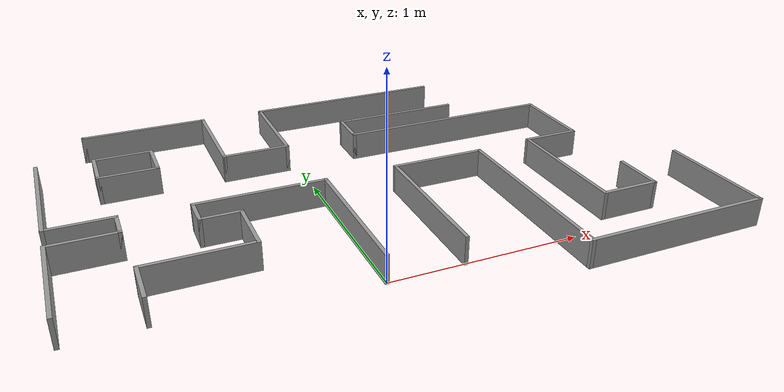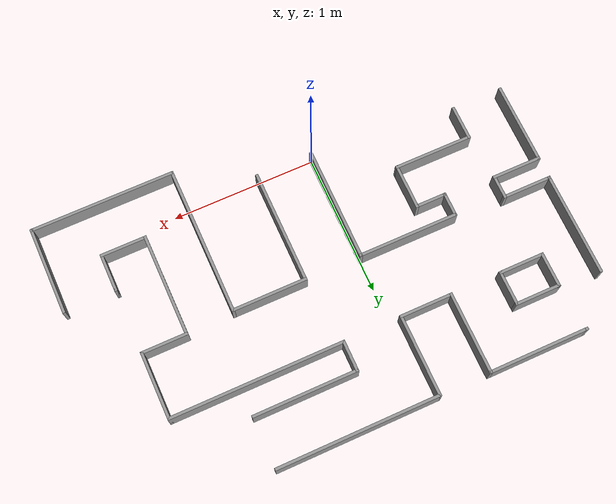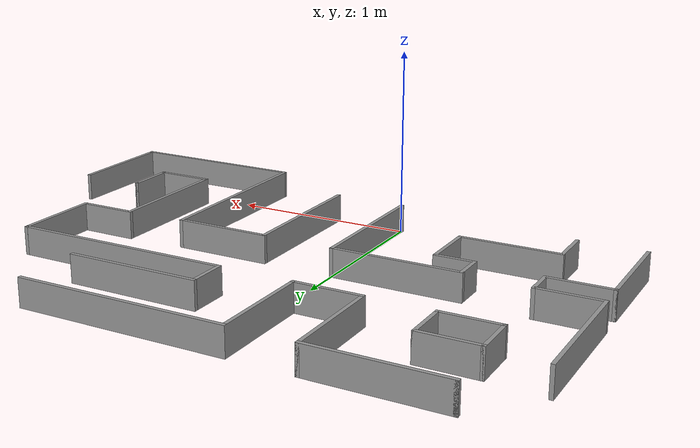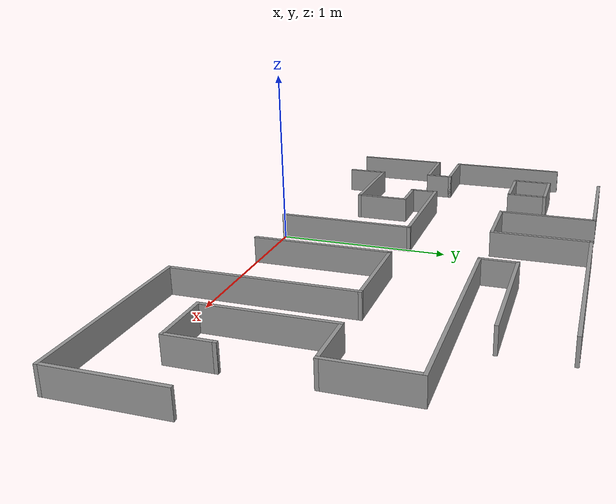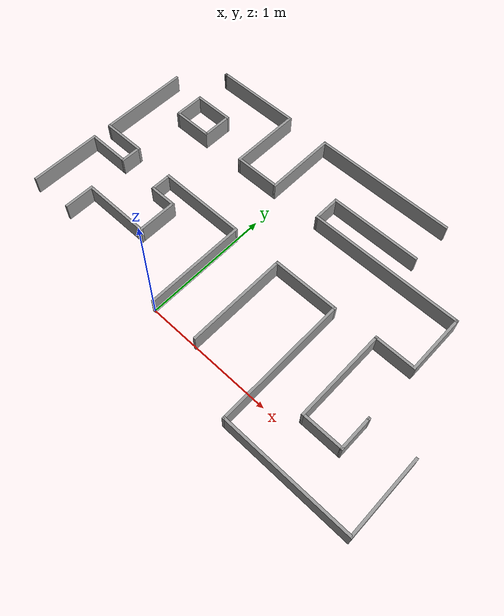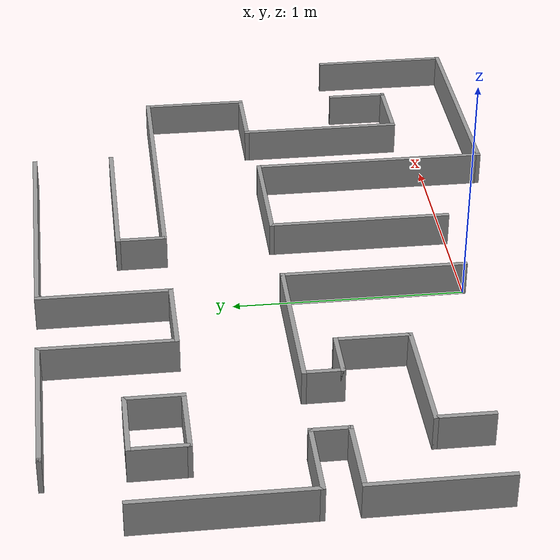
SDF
<?xml version='1.0'?>
<sdf version='1.6'>
  <model name='projmap'>
    <pose frame=''>0.261 0.786 0 0 -0 0</pose>
    <link name='Wall_0'>
      <collision name='Wall_0_Collision'>
        <geometry>
          <box>
            <size>0.807 0.02 0.152</size>
          </box>
        </geometry>
        <pose frame=''>0 0 0.076 0 -0 0</pose>
      </collision>
      <visual name='Wall_0_Visual'>
        <pose frame=''>0 0 0.076 0 -0 0</pose>
        <geometry>
          <box>
            <size>0.807 0.02 0.152</size>
          </box>
        </geometry>
        <material>
          <script>
            <uri>file://media/materials/scripts/gazebo.material</uri>
            <name>Gazebo/Grey</name>
          </script>
          <ambient>1 1 1 1</ambient>
        </material>
        <meta>
          <layer>0</layer>
        </meta>
      </visual>
      <pose frame=''>-0.261 -0.3925 0 0 -0 1.5708</pose>
    </link>
    <link name='Wall_105'>
      <collision name='Wall_105_Collision'>
        <geometry>
          <box>
            <size>0.25 0.02 0.152</size>
          </box>
        </geometry>
        <pose frame=''>0 0 0.076 0 -0 0</pose>
      </collision>
      <visual name='Wall_105_Visual'>
        <pose frame=''>0 0 0.076 0 -0 0</pose>
        <geometry>
          <box>
            <size>0.25 0.02 0.152</size>
          </box>
        </geometry>
        <material>
          <script>
            <uri>file://media/materials/scripts/gazebo.material</uri>
            <name>Gazebo/Grey</name>
          </script>
          <ambient>1 1 1 1</ambient>
        </material>
        <meta>
          <layer>0</layer>
        </meta>
      </visual>
      <pose frame=''>-1.035 0.595 0 0 -0 1.5708</pose>
    </link>
    <link name='Wall_107'>
      <collision name='Wall_107_Collision'>
        <geometry>
          <box>
            <size>0.324 0.02 0.152</size>
          </box>
        </geometry>
        <pose frame=''>0 0 0.076 0 -0 0</pose>
      </collision>
      <visual name='Wall_107_Visual'>
        <pose frame=''>0 0 0.076 0 -0 0</pose>
        <geometry>
          <box>
            <size>0.324 0.02 0.152</size>
          </box>
        </geometry>
        <material>
          <script>
            <uri>file://media/materials/scripts/gazebo.material</uri>
            <name>Gazebo/Grey</name>
          </script>
          <ambient>1 1 1 1</ambient>
        </material>
        <meta>
          <layer>0</layer>
        </meta>
      </visual>
      <pose frame=''>-1.187 0.48 0 0 -0 3.14159</pose>
    </link>
    <link name='Wall_111'>
      <collision name='Wall_111_Collision'>
        <geometry>
          <box>
            <size>0.25 0.02 0.152</size>
          </box>
        </geometry>
        <pose frame=''>0 0 0.076 0 -0 0</pose>
      </collision>
      <visual name='Wall_111_Visual'>
        <pose frame=''>0 0 0.076 0 -0 0</pose>
        <geometry>
          <box>
            <size>0.25 0.02 0.152</size>
          </box>
        </geometry>
        <material>
          <script>
            <uri>file://media/materials/scripts/gazebo.material</uri>
            <name>Gazebo/Grey</name>
          </script>
          <ambient>1 1 1 1</ambient>
        </material>
        <meta>
          <layer>0</layer>
        </meta>
      </visual>
      <pose frame=''>-1.339 0.595 0 0 -0 1.5708</pose>
    </link>
    <link name='Wall_116'>
      <collision name='Wall_116_Collision'>
        <geometry>
          <box>
            <size>0.324 0.02 0.152</size>
          </box>
        </geometry>
        <pose frame=''>0 0 0.076 0 -0 0</pose>
      </collision>
      <visual name='Wall_116_Visual'>
        <pose frame=''>0 0 0.076 0 -0 0</pose>
        <geometry>
          <box>
            <size>0.324 0.02 0.152</size>
          </box>
        </geometry>
        <material>
          <script>
            <uri>file://media/materials/scripts/gazebo.material</uri>
            <name>Gazebo/Grey</name>
          </script>
          <ambient>1 1 1 1</ambient>
        </material>
        <meta>
          <layer>0</layer>
        </meta>
      </visual>
      <pose frame=''>-1.187 0.71 0 0 -0 0</pose>
    </link>
    <link name='Wall_13'>
      <collision name='Wall_13_Collision'>
        <geometry>
          <box>
            <size>0.325 0.02 0.152</size>
          </box>
        </geometry>
        <pose frame=''>0 0 0.076 0 -0 0</pose>
      </collision>
      <visual name='Wall_13_Visual'>
        <pose frame=''>0 0 0.076 0 -0 0</pose>
        <geometry>
          <box>
            <size>0.325 0.02 0.152</size>
          </box>
        </geometry>
        <material>
          <script>
            <uri>file://media/materials/scripts/gazebo.material</uri>
            <name>Gazebo/Grey</name>
          </script>
          <ambient>1 1 1 1</ambient>
        </material>
        <meta>
          <layer>0</layer>
        </meta>
      </visual>
      <pose frame=''>-0.743 -0.3075 0 0 0 -1.5708</pose>
    </link>
    <link name='Wall_15'>
      <collision name='Wall_15_Collision'>
        <geometry>
          <box>
            <size>0.554 0.02 0.152</size>
          </box>
        </geometry>
        <pose frame=''>0 0 0.076 0 -0 0</pose>
      </collision>
      <visual name='Wall_15_Visual'>
        <pose frame=''>0 0 0.076 0 -0 0</pose>
        <geometry>
          <box>
            <size>0.554 0.02 0.152</size>
          </box>
        </geometry>
        <material>
          <script>
            <uri>file://media/materials/scripts/gazebo.material</uri>
            <name>Gazebo/Grey</name>
          </script>
          <ambient>1 1 1 1</ambient>
        </material>
        <meta>
          <layer>0</layer>
        </meta>
      </visual>
      <pose frame=''>-1.01 -0.46 0 0 -0 3.14159</pose>
    </link>
    <link name='Wall_17'>
      <collision name='Wall_17_Collision'>
        <geometry>
          <box>
            <size>0.249 0.02 0.152</size>
          </box>
        </geometry>
        <pose frame=''>0 0 0.076 0 -0 0</pose>
      </collision>
      <visual name='Wall_17_Visual'>
        <pose frame=''>0 0 0.076 0 -0 0</pose>
        <geometry>
          <box>
            <size>0.249 0.02 0.152</size>
          </box>
        </geometry>
        <material>
          <script>
            <uri>file://media/materials/scripts/gazebo.material</uri>
            <name>Gazebo/Grey</name>
          </script>
          <ambient>1 1 1 1</ambient>
        </material>
        <meta>
          <layer>0</layer>
        </meta>
      </visual>
      <pose frame=''>-1.277 -0.5745 0 0 0 -1.5708</pose>
    </link>
    <link name='Wall_2'>
      <collision name='Wall_2_Collision'>
        <geometry>
          <box>
            <size>0.705 0.02 0.152</size>
          </box>
        </geometry>
        <pose frame=''>0 0 0.076 0 -0 0</pose>
      </collision>
      <visual name='Wall_2_Visual'>
        <pose frame=''>0 0 0.076 0 -0 0</pose>
        <geometry>
          <box>
            <size>0.705 0.02 0.152</size>
          </box>
        </geometry>
        <material>
          <script>
            <uri>file://media/materials/scripts/gazebo.material</uri>
            <name>Gazebo/Grey</name>
          </script>
          <ambient>1 1 1 1</ambient>
        </material>
        <meta>
          <layer>0</layer>
        </meta>
      </visual>
      <pose frame=''>-0.6035 0.001 0 0 -0 3.14159</pose>
    </link>
    <link name='Wall_22'>
      <collision name='Wall_22_Collision'>
        <geometry>
          <box>
            <size>0.579 0.02 0.152</size>
          </box>
        </geometry>
        <pose frame=''>0 0 0.076 0 -0 0</pose>
      </collision>
      <visual name='Wall_22_Visual'>
        <pose frame=''>0 0 0.076 0 -0 0</pose>
        <geometry>
          <box>
            <size>0.579 0.02 0.152</size>
          </box>
        </geometry>
        <material>
          <script>
            <uri>file://media/materials/scripts/gazebo.material</uri>
            <name>Gazebo/Grey</name>
          </script>
          <ambient>1 1 1 1</ambient>
        </material>
        <meta>
          <layer>0</layer>
        </meta>
      </visual>
      <pose frame=''>-1.632 -0.4095 0 0 -0 1.5708</pose>
    </link>
    <link name='Wall_24'>
      <collision name='Wall_24_Collision'>
        <geometry>
          <box>
            <size>0.35 0.02 0.152</size>
          </box>
        </geometry>
        <pose frame=''>0 0 0.076 0 -0 0</pose>
      </collision>
      <visual name='Wall_24_Visual'>
        <pose frame=''>0 0 0.076 0 -0 0</pose>
        <geometry>
          <box>
            <size>0.35 0.02 0.152</size>
          </box>
        </geometry>
        <material>
          <script>
            <uri>file://media/materials/scripts/gazebo.material</uri>
            <name>Gazebo/Grey</name>
          </script>
          <ambient>1 1 1 1</ambient>
        </material>
        <meta>
          <layer>0</layer>
        </meta>
      </visual>
      <pose frame=''>-1.467 -0.13 0 0 -0 0</pose>
    </link>
    <link name='Wall_27'>
      <collision name='Wall_27_Collision'>
        <geometry>
          <box>
            <size>0.173 0.02 0.152</size>
          </box>
        </geometry>
        <pose frame=''>0 0 0.076 0 -0 0</pose>
      </collision>
      <visual name='Wall_27_Visual'>
        <pose frame=''>0 0 0.076 0 -0 0</pose>
        <geometry>
          <box>
            <size>0.173 0.02 0.152</size>
          </box>
        </geometry>
        <material>
          <script>
            <uri>file://media/materials/scripts/gazebo.material</uri>
            <name>Gazebo/Grey</name>
          </script>
          <ambient>1 1 1 1</ambient>
        </material>
        <meta>
          <layer>0</layer>
        </meta>
      </visual>
      <pose frame=''>-1.302 -0.0535 0 0 -0 1.5708</pose>
    </link>
    <link name='Wall_30'>
      <collision name='Wall_30_Collision'>
        <geometry>
          <box>
            <size>0.35 0.02 0.152</size>
          </box>
        </geometry>
        <pose frame=''>0 0 0.076 0 -0 0</pose>
      </collision>
      <visual name='Wall_30_Visual'>
        <pose frame=''>0 0 0.076 0 -0 0</pose>
        <geometry>
          <box>
            <size>0.35 0.02 0.152</size>
          </box>
        </geometry>
        <material>
          <script>
            <uri>file://media/materials/scripts/gazebo.material</uri>
            <name>Gazebo/Grey</name>
          </script>
          <ambient>1 1 1 1</ambient>
        </material>
        <meta>
          <layer>0</layer>
        </meta>
      </visual>
      <pose frame=''>-1.467 0.023 0 0 -0 3.14159</pose>
    </link>
    <link name='Wall_32'>
      <collision name='Wall_32_Collision'>
        <geometry>
          <box>
            <size>0.731 0.02 0.152</size>
          </box>
        </geometry>
        <pose frame=''>0 0 0.076 0 -0 0</pose>
      </collision>
      <visual name='Wall_32_Visual'>
        <pose frame=''>0 0 0.076 0 -0 0</pose>
        <geometry>
          <box>
            <size>0.731 0.02 0.152</size>
          </box>
        </geometry>
        <material>
          <script>
            <uri>file://media/materials/scripts/gazebo.material</uri>
            <name>Gazebo/Grey</name>
          </script>
          <ambient>1 1 1 1</ambient>
        </material>
        <meta>
          <layer>0</layer>
        </meta>
      </visual>
      <pose frame=''>-1.632 0.3785 0 0 -0 1.5708</pose>
    </link>
    <link name='Wall_38'>
      <collision name='Wall_38_Collision'>
        <geometry>
          <box>
            <size>0.02 0.02 0.152</size>
          </box>
        </geometry>
        <pose frame=''>0 0 0.076 0 -0 0</pose>
      </collision>
      <visual name='Wall_38_Visual'>
        <pose frame=''>0 0 0.076 0 -0 0</pose>
        <geometry>
          <box>
            <size>0.02 0.02 0.152</size>
          </box>
        </geometry>
        <material>
          <script>
            <uri>file://media/materials/scripts/gazebo.material</uri>
            <name>Gazebo/Grey</name>
          </script>
          <ambient>1 1 1 1</ambient>
        </material>
        <meta>
          <layer>0</layer>
        </meta>
      </visual>
      <pose frame=''>-1.365 1.039 0 0 -0 0</pose>
    </link>
    <link name='Wall_4'>
      <collision name='Wall_4_Collision'>
        <geometry>
          <box>
            <size>0.176 0.02 0.152</size>
          </box>
        </geometry>
        <pose frame=''>0 0 0.076 0 -0 0</pose>
      </collision>
      <visual name='Wall_4_Visual'>
        <pose frame=''>0 0 0.076 0 -0 0</pose>
        <geometry>
          <box>
            <size>0.176 0.02 0.152</size>
          </box>
        </geometry>
        <material>
          <script>
            <uri>file://media/materials/scripts/gazebo.material</uri>
            <name>Gazebo/Grey</name>
          </script>
          <ambient>1 1 1 1</ambient>
        </material>
        <meta>
          <layer>0</layer>
        </meta>
      </visual>
      <pose frame=''>-0.946 -0.077 0 0 0 -1.5708</pose>
    </link>
    <link name='Wall_40'>
      <collision name='Wall_40_Collision'>
        <geometry>
          <box>
            <size>0.706 0.02 0.152</size>
          </box>
        </geometry>
        <pose frame=''>0 0 0.076 0 -0 0</pose>
      </collision>
      <visual name='Wall_40_Visual'>
        <pose frame=''>0 0 0.076 0 -0 0</pose>
        <geometry>
          <box>
            <size>0.706 0.02 0.152</size>
          </box>
        </geometry>
        <material>
          <script>
            <uri>file://media/materials/scripts/gazebo.material</uri>
            <name>Gazebo/Grey</name>
          </script>
          <ambient>1 1 1 1</ambient>
        </material>
        <meta>
          <layer>0</layer>
        </meta>
      </visual>
      <pose frame=''>-1.022 1.039 0 0 -0 0</pose>
    </link>
    <link name='Wall_45'>
      <collision name='Wall_45_Collision'>
        <geometry>
          <box>
            <size>0.579 0.02 0.152</size>
          </box>
        </geometry>
        <pose frame=''>0 0 0.076 0 -0 0</pose>
      </collision>
      <visual name='Wall_45_Visual'>
        <pose frame=''>0 0 0.076 0 -0 0</pose>
        <geometry>
          <box>
            <size>0.579 0.02 0.152</size>
          </box>
        </geometry>
        <material>
          <script>
            <uri>file://media/materials/scripts/gazebo.material</uri>
            <name>Gazebo/Grey</name>
          </script>
          <ambient>1 1 1 1</ambient>
        </material>
        <meta>
          <layer>0</layer>
        </meta>
      </visual>
      <pose frame=''>-0.679 0.7595 0 0 0 -1.5708</pose>
    </link>
    <link name='Wall_47'>
      <collision name='Wall_47_Collision'>
        <geometry>
          <box>
            <size>0.376 0.02 0.152</size>
          </box>
        </geometry>
        <pose frame=''>0 0 0.076 0 -0 0</pose>
      </collision>
      <visual name='Wall_47_Visual'>
        <pose frame=''>0 0 0.076 0 -0 0</pose>
        <geometry>
          <box>
            <size>0.376 0.02 0.152</size>
          </box>
        </geometry>
        <material>
          <script>
            <uri>file://media/materials/scripts/gazebo.material</uri>
            <name>Gazebo/Grey</name>
          </script>
          <ambient>1 1 1 1</ambient>
        </material>
        <meta>
          <layer>0</layer>
        </meta>
      </visual>
      <pose frame=''>-0.501 0.48 0 0 -0 0</pose>
    </link>
    <link name='Wall_49'>
      <collision name='Wall_49_Collision'>
        <geometry>
          <box>
            <size>0.579 0.02 0.152</size>
          </box>
        </geometry>
        <pose frame=''>0 0 0.076 0 -0 0</pose>
      </collision>
      <visual name='Wall_49_Visual'>
        <pose frame=''>0 0 0.076 0 -0 0</pose>
        <geometry>
          <box>
            <size>0.579 0.02 0.152</size>
          </box>
        </geometry>
        <material>
          <script>
            <uri>file://media/materials/scripts/gazebo.material</uri>
            <name>Gazebo/Grey</name>
          </script>
          <ambient>1 1 1 1</ambient>
        </material>
        <meta>
          <layer>0</layer>
        </meta>
      </visual>
      <pose frame=''>-0.323 0.7595 0 0 -0 1.5708</pose>
    </link>
    <link name='Wall_51'>
      <collision name='Wall_51_Collision'>
        <geometry>
          <box>
            <size>1.136 0.02 0.152</size>
          </box>
        </geometry>
        <pose frame=''>0 0 0.076 0 -0 0</pose>
      </collision>
      <visual name='Wall_51_Visual'>
        <pose frame=''>0 0 0.076 0 -0 0</pose>
        <geometry>
          <box>
            <size>1.136 0.02 0.152</size>
          </box>
        </geometry>
        <material>
          <script>
            <uri>file://media/materials/scripts/gazebo.material</uri>
            <name>Gazebo/Grey</name>
          </script>
          <ambient>1 1 1 1</ambient>
        </material>
        <meta>
          <layer>0</layer>
        </meta>
      </visual>
      <pose frame=''>0.235 1.039 0 0 -0 0</pose>
    </link>
    <link name='Wall_55'>
      <collision name='Wall_55_Collision'>
        <geometry>
          <box>
            <size>0.731 0.02 0.152</size>
          </box>
        </geometry>
        <pose frame=''>0 0 0.076 0 -0 0</pose>
      </collision>
      <visual name='Wall_55_Visual'>
        <pose frame=''>0 0 0.076 0 -0 0</pose>
        <geometry>
          <box>
            <size>0.731 0.02 0.152</size>
          </box>
        </geometry>
        <material>
          <script>
            <uri>file://media/materials/scripts/gazebo.material</uri>
            <name>Gazebo/Grey</name>
          </script>
          <ambient>1 1 1 1</ambient>
        </material>
        <meta>
          <layer>0</layer>
        </meta>
      </visual>
      <pose frame=''>0.4375 0.683 0 0 -0 3.14159</pose>
    </link>
    <link name='Wall_58'>
      <collision name='Wall_58_Collision'>
        <geometry>
          <box>
            <size>0.223 0.02 0.152</size>
          </box>
        </geometry>
        <pose frame=''>0 0 0.076 0 -0 0</pose>
      </collision>
      <visual name='Wall_58_Visual'>
        <pose frame=''>0 0 0.076 0 -0 0</pose>
        <geometry>
          <box>
            <size>0.223 0.02 0.152</size>
          </box>
        </geometry>
        <material>
          <script>
            <uri>file://media/materials/scripts/gazebo.material</uri>
            <name>Gazebo/Grey</name>
          </script>
          <ambient>1 1 1 1</ambient>
        </material>
        <meta>
          <layer>0</layer>
        </meta>
      </visual>
      <pose frame=''>0.082 0.5815 0 0 0 -1.5708</pose>
    </link>
    <link name='Wall_61'>
      <collision name='Wall_61_Collision'>
        <geometry>
          <box>
            <size>1.214 0.02 0.152</size>
          </box>
        </geometry>
        <pose frame=''>0 0 0.076 0 -0 0</pose>
      </collision>
      <visual name='Wall_61_Visual'>
        <pose frame=''>0 0 0.076 0 -0 0</pose>
        <geometry>
          <box>
            <size>1.214 0.02 0.152</size>
          </box>
        </geometry>
        <material>
          <script>
            <uri>file://media/materials/scripts/gazebo.material</uri>
            <name>Gazebo/Grey</name>
          </script>
          <ambient>1 1 1 1</ambient>
        </material>
        <meta>
          <layer>0</layer>
        </meta>
      </visual>
      <pose frame=''>0.679 0.48 0 0 -0 0</pose>
    </link>
    <link name='Wall_63'>
      <collision name='Wall_63_Collision'>
        <geometry>
          <box>
            <size>0.477 0.02 0.152</size>
          </box>
        </geometry>
        <pose frame=''>0 0 0.076 0 -0 0</pose>
      </collision>
      <visual name='Wall_63_Visual'>
        <pose frame=''>0 0 0.076 0 -0 0</pose>
        <geometry>
          <box>
            <size>0.477 0.02 0.152</size>
          </box>
        </geometry>
        <material>
          <script>
            <uri>file://media/materials/scripts/gazebo.material</uri>
            <name>Gazebo/Grey</name>
          </script>
          <ambient>1 1 1 1</ambient>
        </material>
        <meta>
          <layer>0</layer>
        </meta>
      </visual>
      <pose frame=''>1.276 0.2515 0 0 0 -1.5708</pose>
    </link>
    <link name='Wall_65'>
      <collision name='Wall_65_Collision'>
        <geometry>
          <box>
            <size>0.325 0.02 0.152</size>
          </box>
        </geometry>
        <pose frame=''>0 0 0.076 0 -0 0</pose>
      </collision>
      <visual name='Wall_65_Visual'>
        <pose frame=''>0 0 0.076 0 -0 0</pose>
        <geometry>
          <box>
            <size>0.325 0.02 0.152</size>
          </box>
        </geometry>
        <material>
          <script>
            <uri>file://media/materials/scripts/gazebo.material</uri>
            <name>Gazebo/Grey</name>
          </script>
          <ambient>1 1 1 1</ambient>
        </material>
        <meta>
          <layer>0</layer>
        </meta>
      </visual>
      <pose frame=''>1.1235 0.023 0 0 -0 3.14159</pose>
    </link>
    <link name='Wall_67'>
      <collision name='Wall_67_Collision'>
        <geometry>
          <box>
            <size>0.732 0.02 0.152</size>
          </box>
        </geometry>
        <pose frame=''>0 0 0.076 0 -0 0</pose>
      </collision>
      <visual name='Wall_67_Visual'>
        <pose frame=''>0 0 0.076 0 -0 0</pose>
        <geometry>
          <box>
            <size>0.732 0.02 0.152</size>
          </box>
        </geometry>
        <material>
          <script>
            <uri>file://media/materials/scripts/gazebo.material</uri>
            <name>Gazebo/Grey</name>
          </script>
          <ambient>1 1 1 1</ambient>
        </material>
        <meta>
          <layer>0</layer>
        </meta>
      </visual>
      <pose frame=''>0.971 -0.333 0 0 0 -1.5708</pose>
    </link>
    <link name='Wall_71'>
      <collision name='Wall_71_Collision'>
        <geometry>
          <box>
            <size>0.02 0.02 0.152</size>
          </box>
        </geometry>
        <pose frame=''>0 0 0.076 0 -0 0</pose>
      </collision>
      <visual name='Wall_71_Visual'>
        <pose frame=''>0 0 0.076 0 -0 0</pose>
        <geometry>
          <box>
            <size>0.02 0.02 0.152</size>
          </box>
        </geometry>
        <material>
          <script>
            <uri>file://media/materials/scripts/gazebo.material</uri>
            <name>Gazebo/Grey</name>
          </script>
          <ambient>1 1 1 1</ambient>
        </material>
        <meta>
          <layer>0</layer>
        </meta>
      </visual>
      <pose frame=''>1.276 -0.435 0 0 -0 0</pose>
    </link>
    <link name='Wall_76'>
      <collision name='Wall_76_Collision'>
        <geometry>
          <box>
            <size>0.325 0.02 0.152</size>
          </box>
        </geometry>
        <pose frame=''>0 0 0.076 0 -0 0</pose>
      </collision>
      <visual name='Wall_76_Visual'>
        <pose frame=''>0 0 0.076 0 -0 0</pose>
        <geometry>
          <box>
            <size>0.325 0.02 0.152</size>
          </box>
        </geometry>
        <material>
          <script>
            <uri>file://media/materials/scripts/gazebo.material</uri>
            <name>Gazebo/Grey</name>
          </script>
          <ambient>1 1 1 1</ambient>
        </material>
        <meta>
          <layer>0</layer>
        </meta>
      </visual>
      <pose frame=''>1.1235 -0.689 0 0 -0 0</pose>
    </link>
    <link name='Wall_78'>
      <collision name='Wall_78_Collision'>
        <geometry>
          <box>
            <size>0.274 0.02 0.152</size>
          </box>
        </geometry>
        <pose frame=''>0 0 0.076 0 -0 0</pose>
      </collision>
      <visual name='Wall_78_Visual'>
        <pose frame=''>0 0 0.076 0 -0 0</pose>
        <geometry>
          <box>
            <size>0.274 0.02 0.152</size>
          </box>
        </geometry>
        <material>
          <script>
            <uri>file://media/materials/scripts/gazebo.material</uri>
            <name>Gazebo/Grey</name>
          </script>
          <ambient>1 1 1 1</ambient>
        </material>
        <meta>
          <layer>0</layer>
        </meta>
      </visual>
      <pose frame=''>1.276 -0.562 0 0 -0 1.5708</pose>
    </link>
    <link name='Wall_9'>
      <collision name='Wall_9_Collision'>
        <geometry>
          <box>
            <size>0.223 0.02 0.152</size>
          </box>
        </geometry>
        <pose frame=''>0 0 0.076 0 -0 0</pose>
      </collision>
      <visual name='Wall_9_Visual'>
        <pose frame=''>0 0 0.076 0 -0 0</pose>
        <geometry>
          <box>
            <size>0.223 0.02 0.152</size>
          </box>
        </geometry>
        <material>
          <script>
            <uri>file://media/materials/scripts/gazebo.material</uri>
            <name>Gazebo/Grey</name>
          </script>
          <ambient>1 1 1 1</ambient>
        </material>
        <meta>
          <layer>0</layer>
        </meta>
      </visual>
      <pose frame=''>-0.8445 -0.155 0 0 -0 0</pose>
    </link>
    <link name='Wall_91'>
      <collision name='Wall_91_Collision'>
        <geometry>
          <box>
            <size>0.624 0.02 0.152</size>
          </box>
        </geometry>
        <pose frame=''>0 0 0.076 0 -0 0</pose>
      </collision>
      <visual name='Wall_91_Visual'>
        <pose frame=''>0 0 0.076 0 -0 0</pose>
        <geometry>
          <box>
            <size>0.624 0.02 0.152</size>
          </box>
        </geometry>
        <material>
          <script>
            <uri>file://media/materials/scripts/gazebo.material</uri>
            <name>Gazebo/Grey</name>
          </script>
          <ambient>1 1 1 1</ambient>
        </material>
        <meta>
          <layer>0</layer>
        </meta>
      </visual>
      <pose frame=''>1.632 -0.737 0 0 0 -1.5708</pose>
    </link>
    <link name='Wall_93'>
      <collision name='Wall_93_Collision'>
        <geometry>
          <box>
            <size>1.011 0.02 0.152</size>
          </box>
        </geometry>
        <pose frame=''>0 0 0.076 0 -0 0</pose>
      </collision>
      <visual name='Wall_93_Visual'>
        <pose frame=''>0 0 0.076 0 -0 0</pose>
        <geometry>
          <box>
            <size>1.011 0.02 0.152</size>
          </box>
        </geometry>
        <material>
          <script>
            <uri>file://media/materials/scripts/gazebo.material</uri>
            <name>Gazebo/Grey</name>
          </script>
          <ambient>1 1 1 1</ambient>
        </material>
        <meta>
          <layer>0</layer>
        </meta>
      </visual>
      <pose frame=''>1.1365 -1.039 0 0 -0 3.14159</pose>
    </link>
    <link name='Wall_95'>
      <collision name='Wall_95_Collision'>
        <geometry>
          <box>
            <size>1.06 0.02 0.152</size>
          </box>
        </geometry>
        <pose frame=''>0 0 0.076 0 -0 0</pose>
      </collision>
      <visual name='Wall_95_Visual'>
        <pose frame=''>0 0 0.076 0 -0 0</pose>
        <geometry>
          <box>
            <size>1.06 0.02 0.152</size>
          </box>
        </geometry>
        <material>
          <script>
            <uri>file://media/materials/scripts/gazebo.material</uri>
            <name>Gazebo/Grey</name>
          </script>
          <ambient>1 1 1 1</ambient>
        </material>
        <meta>
          <layer>0</layer>
        </meta>
      </visual>
      <pose frame=''>0.641 -0.519 0 0 -0 1.5708</pose>
    </link>
    <link name='Wall_97'>
      <collision name='Wall_97_Collision'>
        <geometry>
          <box>
            <size>0.528 0.02 0.152</size>
          </box>
        </geometry>
        <pose frame=''>0 0 0.076 0 -0 0</pose>
      </collision>
      <visual name='Wall_97_Visual'>
        <pose frame=''>0 0 0.076 0 -0 0</pose>
        <geometry>
          <box>
            <size>0.528 0.02 0.152</size>
          </box>
        </geometry>
        <material>
          <script>
            <uri>file://media/materials/scripts/gazebo.material</uri>
            <name>Gazebo/Grey</name>
          </script>
          <ambient>1 1 1 1</ambient>
        </material>
        <meta>
          <layer>0</layer>
        </meta>
      </visual>
      <pose frame=''>0.387 0.001 0 0 -0 3.14159</pose>
    </link>
    <link name='Wall_99'>
      <collision name='Wall_99_Collision'>
        <geometry>
          <box>
            <size>0.807 0.02 0.152</size>
          </box>
        </geometry>
        <pose frame=''>0 0 0.076 0 -0 0</pose>
      </collision>
      <visual name='Wall_99_Visual'>
        <pose frame=''>0 0 0.076 0 -0 0</pose>
        <geometry>
          <box>
            <size>0.807 0.02 0.152</size>
          </box>
        </geometry>
        <material>
          <script>
            <uri>file://media/materials/scripts/gazebo.material</uri>
            <name>Gazebo/Grey</name>
          </script>
          <ambient>1 1 1 1</ambient>
        </material>
        <meta>
          <layer>0</layer>
        </meta>
      </visual>
      <pose frame=''>0.133 -0.3925 0 0 0 -1.5708</pose>
    </link>
    <static>1</static>
  </model>
</sdf>
